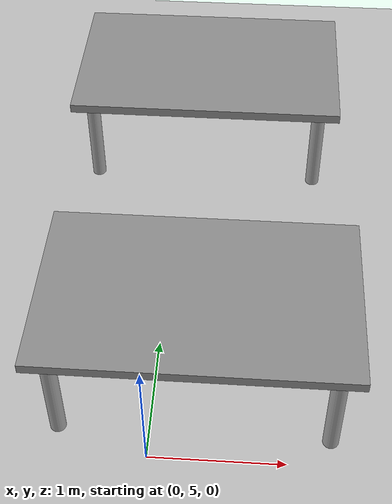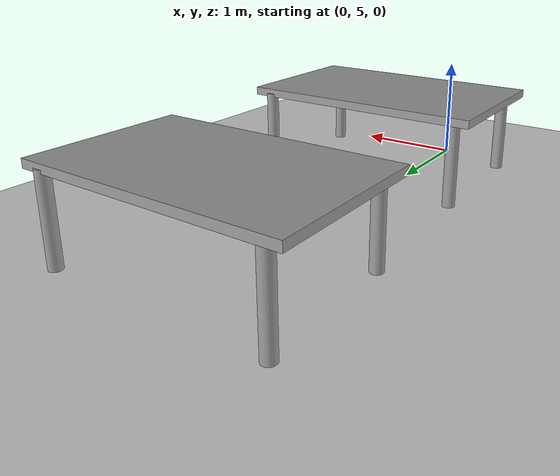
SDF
<sdf version="1.6">
 <world name="default">
  <model name="ground_plane">
   <static>1</static>
   <link name="link">
    <collision name="collision">
     <geometry><plane><normal>0 0 1</normal><size>100 100</size></plane></geometry>
     <surface>
      <contact><collide_bitmask>65535</collide_bitmask></contact>
      <friction><ode><mu>100</mu><mu2>50</mu2></ode></friction>
     </surface>
    </collision>
    <visual name="visual">
     <cast_shadows>0</cast_shadows>
     <geometry><plane><normal>0 0 1</normal><size>100 100</size></plane></geometry>
     <material>
      <script><uri>file://media/materials/scripts/gazebo.material</uri><name>Gazebo/Grey</name></script>
     </material>
    </visual>
   </link>
  </model>
  <model name="table1_clone_1">
   <link name="link_0">
    <inertial>
     <mass>0.0138978</mass>
     <inertia>
      <ixx>0.000753284</ixx>
      <ixy>0</ixy>
      <ixz>0</ixz>
      <iyy>0.000753284</iyy>
      <iyz>0</iyz>
      <izz>2.41414e-05</izz>
     </inertia>
    </inertial>
    <pose>-0.986535 -0.645852 -0.081533 0 -0 0</pose>
    <visual name="visual">
     <geometry><cylinder><radius>0.0589418</radius><length>0.8</length></cylinder></geometry>
     <material>
      <lighting>1</lighting>
      <script><uri>file://media/materials/scripts/gazebo.material</uri><name>Gazebo/Grey</name></script>
      <shader type="vertex"><normal_map>__default__</normal_map></shader>
      <ambient>0.3 0.3 0.3 1</ambient>
      <diffuse>0.7 0.7 0.7 1</diffuse>
      <specular>0.01 0.01 0.01 1</specular>
      <emissive>0 0 0 1</emissive>
     </material>
    </visual>
    <collision name="collision">
     <geometry><cylinder><radius>0.058942</radius><length>0.8</length></cylinder></geometry>
     <surface>
      <friction>
       <ode><mu>1</mu><mu2>1</mu2><fdir1>0 0 0</fdir1><slip1>0</slip1><slip2>0</slip2></ode>
       <torsional>
        <coefficient>1</coefficient>
        <patch_radius>0</patch_radius>
        <surface_radius>0</surface_radius>
        <use_patch_radius>1</use_patch_radius>
        <ode><slip>0</slip></ode>
       </torsional>
      </friction>
      <bounce><restitution_coefficient>0</restitution_coefficient><threshold>1e+06</threshold></bounce>
      <contact>
       <collide_without_contact>0</collide_without_contact>
       <collide_without_contact_bitmask>1</collide_without_contact_bitmask>
       <collide_bitmask>1</collide_bitmask>
       <ode>
        <soft_cfm>0</soft_cfm>
        <soft_erp>0.2</soft_erp>
        <kp>1e+13</kp>
        <kd>1</kd>
        <max_vel>0.01</max_vel>
        <min_depth>0</min_depth>
       </ode>
       <bullet>
        <split_impulse>1</split_impulse>
        <split_impulse_penetration_threshold>-0.01</split_impulse_penetration_threshold>
        <soft_cfm>0</soft_cfm>
        <soft_erp>0.2</soft_erp>
        <kp>1e+13</kp>
        <kd>1</kd>
       </bullet>
      </contact>
     </surface>
    </collision>
   </link>
   <link name="link_0_clone">
    <inertial>
     <mass>0.0138978</mass>
     <inertia>
      <ixx>0.000753284</ixx>
      <ixy>0</ixy>
      <ixz>0</ixz>
      <iyy>0.000753284</iyy>
      <iyz>0</iyz>
      <izz>2.41414e-05</izz>
     </inertia>
    </inertial>
    <pose>-1.00558 0.645455 -0.081533 0 -0 0</pose>
    <visual name="visual">
     <geometry><cylinder><radius>0.0589418</radius><length>0.8</length></cylinder></geometry>
     <material>
      <lighting>1</lighting>
      <script><uri>file://media/materials/scripts/gazebo.material</uri><name>Gazebo/Grey</name></script>
      <shader type="vertex"><normal_map>__default__</normal_map></shader>
      <ambient>0.3 0.3 0.3 1</ambient>
      <diffuse>0.7 0.7 0.7 1</diffuse>
      <specular>0.01 0.01 0.01 1</specular>
      <emissive>0 0 0 1</emissive>
     </material>
    </visual>
    <collision name="collision">
     <geometry><cylinder><radius>0.058942</radius><length>0.8</length></cylinder></geometry>
     <surface>
      <friction>
       <ode><mu>1</mu><mu2>1</mu2><fdir1>0 0 0</fdir1><slip1>0</slip1><slip2>0</slip2></ode>
       <torsional>
        <coefficient>1</coefficient>
        <patch_radius>0</patch_radius>
        <surface_radius>0</surface_radius>
        <use_patch_radius>1</use_patch_radius>
        <ode><slip>0</slip></ode>
       </torsional>
      </friction>
      <bounce><restitution_coefficient>0</restitution_coefficient><threshold>1e+06</threshold></bounce>
      <contact>
       <collide_without_contact>0</collide_without_contact>
       <collide_without_contact_bitmask>1</collide_without_contact_bitmask>
       <collide_bitmask>1</collide_bitmask>
       <ode>
        <soft_cfm>0</soft_cfm>
        <soft_erp>0.2</soft_erp>
        <kp>1e+13</kp>
        <kd>1</kd>
        <max_vel>0.01</max_vel>
        <min_depth>0</min_depth>
       </ode>
       <bullet>
        <split_impulse>1</split_impulse>
        <split_impulse_penetration_threshold>-0.01</split_impulse_penetration_threshold>
        <soft_cfm>0</soft_cfm>
        <soft_erp>0.2</soft_erp>
        <kp>1e+13</kp>
        <kd>1</kd>
       </bullet>
      </contact>
     </surface>
    </collision>
   </link>
   <link name="link_0_clone_0">
    <inertial>
     <mass>0.0138978</mass>
     <inertia>
      <ixx>0.000753284</ixx>
      <ixy>0</ixy>
      <ixz>0</ixz>
      <iyy>0.000753284</iyy>
      <iyz>0</iyz>
      <izz>2.41414e-05</izz>
     </inertia>
    </inertial>
    <pose>0.995821 -0.65431 -0.081533 0 -0 0</pose>
    <visual name="visual">
     <geometry><cylinder><radius>0.0589418</radius><length>0.8</length></cylinder></geometry>
     <material>
      <lighting>1</lighting>
      <script><uri>file://media/materials/scripts/gazebo.material</uri><name>Gazebo/Grey</name></script>
      <shader type="vertex"><normal_map>__default__</normal_map></shader>
      <ambient>0.3 0.3 0.3 1</ambient>
      <diffuse>0.7 0.7 0.7 1</diffuse>
      <specular>0.01 0.01 0.01 1</specular>
      <emissive>0 0 0 1</emissive>
     </material>
    </visual>
    <collision name="collision">
     <geometry><cylinder><radius>0.058942</radius><length>0.8</length></cylinder></geometry>
     <surface>
      <friction>
       <ode><mu>1</mu><mu2>1</mu2><fdir1>0 0 0</fdir1><slip1>0</slip1><slip2>0</slip2></ode>
       <torsional>
        <coefficient>1</coefficient>
        <patch_radius>0</patch_radius>
        <surface_radius>0</surface_radius>
        <use_patch_radius>1</use_patch_radius>
        <ode><slip>0</slip></ode>
       </torsional>
      </friction>
      <bounce><restitution_coefficient>0</restitution_coefficient><threshold>1e+06</threshold></bounce>
      <contact>
       <collide_without_contact>0</collide_without_contact>
       <collide_without_contact_bitmask>1</collide_without_contact_bitmask>
       <collide_bitmask>1</collide_bitmask>
       <ode>
        <soft_cfm>0</soft_cfm>
        <soft_erp>0.2</soft_erp>
        <kp>1e+13</kp>
        <kd>1</kd>
        <max_vel>0.01</max_vel>
        <min_depth>0</min_depth>
       </ode>
       <bullet>
        <split_impulse>1</split_impulse>
        <split_impulse_penetration_threshold>-0.01</split_impulse_penetration_threshold>
        <soft_cfm>0</soft_cfm>
        <soft_erp>0.2</soft_erp>
        <kp>1e+13</kp>
        <kd>1</kd>
       </bullet>
      </contact>
     </surface>
    </collision>
   </link>
   <link name="link_0_clone_1">
    <inertial>
     <mass>0.0138978</mass>
     <inertia>
      <ixx>0.000753284</ixx>
      <ixy>0</ixy>
      <ixz>0</ixz>
      <iyy>0.000753284</iyy>
      <iyz>0</iyz>
      <izz>2.41414e-05</izz>
     </inertia>
    </inertial>
    <pose>0.993949 0.669896 -0.081533 0 -0 0</pose>
    <visual name="visual">
     <geometry><cylinder><radius>0.0589418</radius><length>0.8</length></cylinder></geometry>
     <material>
      <lighting>1</lighting>
      <script><uri>file://media/materials/scripts/gazebo.material</uri><name>Gazebo/Grey</name></script>
      <shader type="vertex"><normal_map>__default__</normal_map></shader>
      <ambient>0.3 0.3 0.3 1</ambient>
      <diffuse>0.7 0.7 0.7 1</diffuse>
      <specular>0.01 0.01 0.01 1</specular>
      <emissive>0 0 0 1</emissive>
     </material>
    </visual>
    <collision name="collision">
     <geometry><cylinder><radius>0.058942</radius><length>0.8</length></cylinder></geometry>
     <surface>
      <friction>
       <ode><mu>1</mu><mu2>1</mu2><fdir1>0 0 0</fdir1><slip1>0</slip1><slip2>0</slip2></ode>
       <torsional>
        <coefficient>1</coefficient>
        <patch_radius>0</patch_radius>
        <surface_radius>0</surface_radius>
        <use_patch_radius>1</use_patch_radius>
        <ode><slip>0</slip></ode>
       </torsional>
      </friction>
      <bounce><restitution_coefficient>0</restitution_coefficient><threshold>1e+06</threshold></bounce>
      <contact>
       <collide_without_contact>0</collide_without_contact>
       <collide_without_contact_bitmask>1</collide_without_contact_bitmask>
       <collide_bitmask>1</collide_bitmask>
       <ode>
        <soft_cfm>0</soft_cfm>
        <soft_erp>0.2</soft_erp>
        <kp>1e+13</kp>
        <kd>1</kd>
        <max_vel>0.01</max_vel>
        <min_depth>0</min_depth>
       </ode>
       <bullet>
        <split_impulse>1</split_impulse>
        <split_impulse_penetration_threshold>-0.01</split_impulse_penetration_threshold>
        <soft_cfm>0</soft_cfm>
        <soft_erp>0.2</soft_erp>
        <kp>1e+13</kp>
        <kd>1</kd>
       </bullet>
      </contact>
     </surface>
    </collision>
   </link>
   <link name="link_1">
    <inertial>
     <mass>0.262647</mass>
     <inertia>
      <ixx>0.0459207</ixx>
      <ixy>0</ixy>
      <ixz>0</ixz>
      <iyy>0.120256</iyy>
      <iyz>0</iyz>
      <izz>0.165913</izz>
     </inertia>
    </inertial>
    <pose>0.002338 -0.01518 0.326132 0 -0 0</pose>
    <visual name="visual">
     <geometry><box><size>2.34271 1.44639 0.077598</size></box></geometry>
     <material>
      <lighting>1</lighting>
      <script><uri>file://media/materials/scripts/gazebo.material</uri><name>Gazebo/Grey</name></script>
      <shader type="vertex"><normal_map>__default__</normal_map></shader>
     </material>
    </visual>
    <collision name="collision">
     <geometry><box><size>2.34271 1.44639 0.077598</size></box></geometry>
     <surface>
      <friction>
       <ode><mu>1</mu><mu2>1</mu2><fdir1>0 0 0</fdir1><slip1>0</slip1><slip2>0</slip2></ode>
       <torsional>
        <coefficient>1</coefficient>
        <patch_radius>0</patch_radius>
        <surface_radius>0</surface_radius>
        <use_patch_radius>1</use_patch_radius>
        <ode><slip>0</slip></ode>
       </torsional>
      </friction>
      <bounce><restitution_coefficient>0</restitution_coefficient><threshold>1e+06</threshold></bounce>
      <contact>
       <collide_without_contact>1</collide_without_contact>
       <collide_without_contact_bitmask>1</collide_without_contact_bitmask>
       <collide_bitmask>1</collide_bitmask>
       <ode>
        <soft_cfm>0</soft_cfm>
        <soft_erp>0.2</soft_erp>
        <kp>1e+13</kp>
        <kd>1</kd>
        <max_vel>0.01</max_vel>
        <min_depth>0</min_depth>
       </ode>
       <bullet>
        <split_impulse>1</split_impulse>
        <split_impulse_penetration_threshold>-0.01</split_impulse_penetration_threshold>
        <soft_cfm>0</soft_cfm>
        <soft_erp>0.2</soft_erp>
        <kp>1e+13</kp>
        <kd>1</kd>
       </bullet>
      </contact>
     </surface>
    </collision>
   </link>
   <static>0</static>
   <pose>0.223196 8.60527 0.481527 0 -0 1e-06</pose>
  </model>
  <model name="table1_clone_3">
   <link name="link_0">
    <inertial>
     <mass>0.0138978</mass>
     <inertia>
      <ixx>0.000753284</ixx>
      <ixy>0</ixy>
      <ixz>0</ixz>
      <iyy>0.000753284</iyy>
      <iyz>0</iyz>
      <izz>2.41414e-05</izz>
     </inertia>
    </inertial>
    <pose>-0.986535 -0.645852 -0.081533 0 -0 0</pose>
    <visual name="visual">
     <geometry><cylinder><radius>0.0589418</radius><length>0.8</length></cylinder></geometry>
     <material>
      <lighting>1</lighting>
      <script><uri>file://media/materials/scripts/gazebo.material</uri><name>Gazebo/Grey</name></script>
      <shader type="vertex"><normal_map>__default__</normal_map></shader>
      <ambient>0.3 0.3 0.3 1</ambient>
      <diffuse>0.7 0.7 0.7 1</diffuse>
      <specular>0.01 0.01 0.01 1</specular>
      <emissive>0 0 0 1</emissive>
     </material>
    </visual>
    <collision name="collision">
     <geometry><cylinder><radius>0.058942</radius><length>0.8</length></cylinder></geometry>
     <surface>
      <friction>
       <ode><mu>1</mu><mu2>1</mu2><fdir1>0 0 0</fdir1><slip1>0</slip1><slip2>0</slip2></ode>
       <torsional>
        <coefficient>1</coefficient>
        <patch_radius>0</patch_radius>
        <surface_radius>0</surface_radius>
        <use_patch_radius>1</use_patch_radius>
        <ode><slip>0</slip></ode>
       </torsional>
      </friction>
      <bounce><restitution_coefficient>0</restitution_coefficient><threshold>1e+06</threshold></bounce>
      <contact>
       <collide_without_contact>0</collide_without_contact>
       <collide_without_contact_bitmask>1</collide_without_contact_bitmask>
       <collide_bitmask>1</collide_bitmask>
       <ode>
        <soft_cfm>0</soft_cfm>
        <soft_erp>0.2</soft_erp>
        <kp>1e+13</kp>
        <kd>1</kd>
        <max_vel>0.01</max_vel>
        <min_depth>0</min_depth>
       </ode>
       <bullet>
        <split_impulse>1</split_impulse>
        <split_impulse_penetration_threshold>-0.01</split_impulse_penetration_threshold>
        <soft_cfm>0</soft_cfm>
        <soft_erp>0.2</soft_erp>
        <kp>1e+13</kp>
        <kd>1</kd>
       </bullet>
      </contact>
     </surface>
    </collision>
   </link>
   <link name="link_0_clone">
    <inertial>
     <mass>0.0138978</mass>
     <inertia>
      <ixx>0.000753284</ixx>
      <ixy>0</ixy>
      <ixz>0</ixz>
      <iyy>0.000753284</iyy>
      <iyz>0</iyz>
      <izz>2.41414e-05</izz>
     </inertia>
    </inertial>
    <pose>-1.00558 0.645455 -0.081533 0 -0 0</pose>
    <visual name="visual">
     <geometry><cylinder><radius>0.0589418</radius><length>0.8</length></cylinder></geometry>
     <material>
      <lighting>1</lighting>
      <script><uri>file://media/materials/scripts/gazebo.material</uri><name>Gazebo/Grey</name></script>
      <shader type="vertex"><normal_map>__default__</normal_map></shader>
      <ambient>0.3 0.3 0.3 1</ambient>
      <diffuse>0.7 0.7 0.7 1</diffuse>
      <specular>0.01 0.01 0.01 1</specular>
      <emissive>0 0 0 1</emissive>
     </material>
    </visual>
    <collision name="collision">
     <geometry><cylinder><radius>0.058942</radius><length>0.8</length></cylinder></geometry>
     <surface>
      <friction>
       <ode><mu>1</mu><mu2>1</mu2><fdir1>0 0 0</fdir1><slip1>0</slip1><slip2>0</slip2></ode>
       <torsional>
        <coefficient>1</coefficient>
        <patch_radius>0</patch_radius>
        <surface_radius>0</surface_radius>
        <use_patch_radius>1</use_patch_radius>
        <ode><slip>0</slip></ode>
       </torsional>
      </friction>
      <bounce><restitution_coefficient>0</restitution_coefficient><threshold>1e+06</threshold></bounce>
      <contact>
       <collide_without_contact>0</collide_without_contact>
       <collide_without_contact_bitmask>1</collide_without_contact_bitmask>
       <collide_bitmask>1</collide_bitmask>
       <ode>
        <soft_cfm>0</soft_cfm>
        <soft_erp>0.2</soft_erp>
        <kp>1e+13</kp>
        <kd>1</kd>
        <max_vel>0.01</max_vel>
        <min_depth>0</min_depth>
       </ode>
       <bullet>
        <split_impulse>1</split_impulse>
        <split_impulse_penetration_threshold>-0.01</split_impulse_penetration_threshold>
        <soft_cfm>0</soft_cfm>
        <soft_erp>0.2</soft_erp>
        <kp>1e+13</kp>
        <kd>1</kd>
       </bullet>
      </contact>
     </surface>
    </collision>
   </link>
   <link name="link_0_clone_0">
    <inertial>
     <mass>0.0138978</mass>
     <inertia>
      <ixx>0.000753284</ixx>
      <ixy>0</ixy>
      <ixz>0</ixz>
      <iyy>0.000753284</iyy>
      <iyz>0</iyz>
      <izz>2.41414e-05</izz>
     </inertia>
    </inertial>
    <pose>0.995821 -0.65431 -0.081533 0 -0 0</pose>
    <visual name="visual">
     <geometry><cylinder><radius>0.0589418</radius><length>0.8</length></cylinder></geometry>
     <material>
      <lighting>1</lighting>
      <script><uri>file://media/materials/scripts/gazebo.material</uri><name>Gazebo/Grey</name></script>
      <shader type="vertex"><normal_map>__default__</normal_map></shader>
      <ambient>0.3 0.3 0.3 1</ambient>
      <diffuse>0.7 0.7 0.7 1</diffuse>
      <specular>0.01 0.01 0.01 1</specular>
      <emissive>0 0 0 1</emissive>
     </material>
    </visual>
    <collision name="collision">
     <geometry><cylinder><radius>0.058942</radius><length>0.8</length></cylinder></geometry>
     <surface>
      <friction>
       <ode><mu>1</mu><mu2>1</mu2><fdir1>0 0 0</fdir1><slip1>0</slip1><slip2>0</slip2></ode>
       <torsional>
        <coefficient>1</coefficient>
        <patch_radius>0</patch_radius>
        <surface_radius>0</surface_radius>
        <use_patch_radius>1</use_patch_radius>
        <ode><slip>0</slip></ode>
       </torsional>
      </friction>
      <bounce><restitution_coefficient>0</restitution_coefficient><threshold>1e+06</threshold></bounce>
      <contact>
       <collide_without_contact>0</collide_without_contact>
       <collide_without_contact_bitmask>1</collide_without_contact_bitmask>
       <collide_bitmask>1</collide_bitmask>
       <ode>
        <soft_cfm>0</soft_cfm>
        <soft_erp>0.2</soft_erp>
        <kp>1e+13</kp>
        <kd>1</kd>
        <max_vel>0.01</max_vel>
        <min_depth>0</min_depth>
       </ode>
       <bullet>
        <split_impulse>1</split_impulse>
        <split_impulse_penetration_threshold>-0.01</split_impulse_penetration_threshold>
        <soft_cfm>0</soft_cfm>
        <soft_erp>0.2</soft_erp>
        <kp>1e+13</kp>
        <kd>1</kd>
       </bullet>
      </contact>
     </surface>
    </collision>
   </link>
   <link name="link_0_clone_1">
    <inertial>
     <mass>0.0138978</mass>
     <inertia>
      <ixx>0.000753284</ixx>
      <ixy>0</ixy>
      <ixz>0</ixz>
      <iyy>0.000753284</iyy>
      <iyz>0</iyz>
      <izz>2.41414e-05</izz>
     </inertia>
    </inertial>
    <pose>0.993949 0.669896 -0.081533 0 -0 0</pose>
    <visual name="visual">
     <geometry><cylinder><radius>0.0589418</radius><length>0.8</length></cylinder></geometry>
     <material>
      <lighting>1</lighting>
      <script><uri>file://media/materials/scripts/gazebo.material</uri><name>Gazebo/Grey</name></script>
      <shader type="vertex"><normal_map>__default__</normal_map></shader>
      <ambient>0.3 0.3 0.3 1</ambient>
      <diffuse>0.7 0.7 0.7 1</diffuse>
      <specular>0.01 0.01 0.01 1</specular>
      <emissive>0 0 0 1</emissive>
     </material>
    </visual>
    <collision name="collision">
     <geometry><cylinder><radius>0.058942</radius><length>0.8</length></cylinder></geometry>
     <surface>
      <friction>
       <ode><mu>1</mu><mu2>1</mu2><fdir1>0 0 0</fdir1><slip1>0</slip1><slip2>0</slip2></ode>
       <torsional>
        <coefficient>1</coefficient>
        <patch_radius>0</patch_radius>
        <surface_radius>0</surface_radius>
        <use_patch_radius>1</use_patch_radius>
        <ode><slip>0</slip></ode>
       </torsional>
      </friction>
      <bounce><restitution_coefficient>0</restitution_coefficient><threshold>1e+06</threshold></bounce>
      <contact>
       <collide_without_contact>0</collide_without_contact>
       <collide_without_contact_bitmask>1</collide_without_contact_bitmask>
       <collide_bitmask>1</collide_bitmask>
       <ode>
        <soft_cfm>0</soft_cfm>
        <soft_erp>0.2</soft_erp>
        <kp>1e+13</kp>
        <kd>1</kd>
        <max_vel>0.01</max_vel>
        <min_depth>0</min_depth>
       </ode>
       <bullet>
        <split_impulse>1</split_impulse>
        <split_impulse_penetration_threshold>-0.01</split_impulse_penetration_threshold>
        <soft_cfm>0</soft_cfm>
        <soft_erp>0.2</soft_erp>
        <kp>1e+13</kp>
        <kd>1</kd>
       </bullet>
      </contact>
     </surface>
    </collision>
   </link>
   <link name="link_1">
    <inertial>
     <mass>0.262647</mass>
     <inertia>
      <ixx>0.0459207</ixx>
      <ixy>0</ixy>
      <ixz>0</ixz>
      <iyy>0.120256</iyy>
      <iyz>0</iyz>
      <izz>0.165913</izz>
     </inertia>
    </inertial>
    <pose>0.002338 -0.01518 0.326132 0 -0 0</pose>
    <visual name="visual">
     <geometry><box><size>2.34271 1.44639 0.077598</size></box></geometry>
     <material>
      <lighting>1</lighting>
      <script><uri>file://media/materials/scripts/gazebo.material</uri><name>Gazebo/Grey</name></script>
      <shader type="vertex"><normal_map>__default__</normal_map></shader>
     </material>
    </visual>
    <collision name="collision">
     <geometry><box><size>2.34271 1.44639 0.077598</size></box></geometry>
     <surface>
      <friction>
       <ode><mu>1</mu><mu2>1</mu2><fdir1>0 0 0</fdir1><slip1>0</slip1><slip2>0</slip2></ode>
       <torsional>
        <coefficient>1</coefficient>
        <patch_radius>0</patch_radius>
        <surface_radius>0</surface_radius>
        <use_patch_radius>1</use_patch_radius>
        <ode><slip>0</slip></ode>
       </torsional>
      </friction>
      <bounce><restitution_coefficient>0</restitution_coefficient><threshold>1e+06</threshold></bounce>
      <contact>
       <collide_without_contact>1</collide_without_contact>
       <collide_without_contact_bitmask>1</collide_without_contact_bitmask>
       <collide_bitmask>1</collide_bitmask>
       <ode>
        <soft_cfm>0</soft_cfm>
        <soft_erp>0.2</soft_erp>
        <kp>1e+13</kp>
        <kd>1</kd>
        <max_vel>0.01</max_vel>
        <min_depth>0</min_depth>
       </ode>
       <bullet>
        <split_impulse>1</split_impulse>
        <split_impulse_penetration_threshold>-0.01</split_impulse_penetration_threshold>
        <soft_cfm>0</soft_cfm>
        <soft_erp>0.2</soft_erp>
        <kp>1e+13</kp>
        <kd>1</kd>
       </bullet>
      </contact>
     </surface>
    </collision>
   </link>
   <static>0</static>
   <pose>0.317351 5.86307 0.481527 0 -0 1e-06</pose>
  </model>
 </world>
</sdf>
